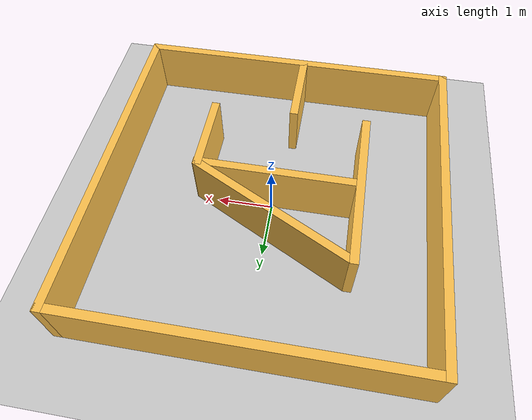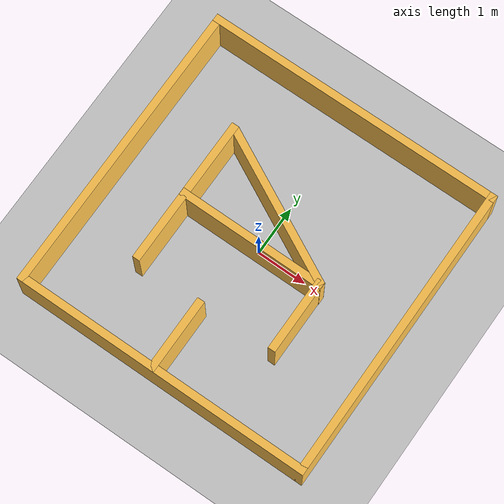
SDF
<?xml version='1.0'?>
<sdf version='1.5'>
<world name='default'>
  <light name='sun' type='directional'>
      <cast_shadows>1</cast_shadows>
      <pose>0 0 10 0 -0 0</pose>
      <diffuse>0.8 0.8 0.8 1</diffuse>
      <specular>0.2 0.2 0.2 1</specular>
      <attenuation>
        <range>1000</range>
        <constant>0.9</constant>
        <linear>0.01</linear>
        <quadratic>0.001</quadratic>
      </attenuation>
      <direction>0.5 0.1 -0.9</direction>
    </light>

  <model name='ground_plane'>
      <static>1</static>
      <link name='link'>
        <collision name='collision'>
          <geometry>
            <plane>
              <normal>0 0 1</normal>
              <size>100 100</size>
            </plane>
          </geometry>
          <surface>
            <friction>
              <ode>
                <mu>100</mu>
                <mu2>50</mu2>
              </ode>
            </friction>
            <bounce/>
            <contact>
              <ode/>
            </contact>
          </surface>
          <max_contacts>10</max_contacts>
        </collision>
        <visual name='visual'>
          <cast_shadows>0</cast_shadows>
          <geometry>
            <plane>
              <normal>0 0 1</normal>
              <size>100 100</size>
            </plane>
          </geometry>
          <material>
            <script>
              <uri>file://media/materials/scripts/gazebo.material</uri>
              <name>Gazebo/Grey</name>
            </script>
          </material>
        </visual>
        <velocity_decay>
          <linear>0</linear>
          <angular>0</angular>
        </velocity_decay>
        <self_collide>0</self_collide>
        <kinematic>0</kinematic>
        <gravity>1</gravity>
      </link>
  </model>

  <model name='Circuit_ql_1'>
    <link name='Wall_10'>
      <pose frame=''>-0.0015 2.925 0 0 -0 3.14159</pose>
      <self_collide>0</self_collide>
      <kinematic>0</kinematic>
      <visual name='Wall_10_Visual'>
        <pose frame=''>0 0 0.5 0 -0 0</pose>
        <geometry>
          <box>
            <size>6 0.15 1</size>
          </box>
        </geometry>
        <material>
          <script>
            <uri>file://media/materials/scripts/gazebo.material</uri>
            <name>Gazebo/Grey</name>
          </script>
          <ambient>1 0.764706 0.305882 1</ambient>
          <shader type='pixel'/>
          <diffuse>0.7 0.7 0.7 1</diffuse>
          <specular>0.01 0.01 0.01 1</specular>
          <emissive>0 0 0 1</emissive>
        </material>
        <cast_shadows>1</cast_shadows>
        <transparency>0</transparency>
      </visual>
      <collision name='Wall_10_Collision'>
        <laser_retro>0</laser_retro>
        <max_contacts>10</max_contacts>
        <pose frame=''>0 0 0.5 0 -0 0</pose>
        <geometry>
          <box>
            <size>6 0.15 1</size>
          </box>
        </geometry>
        <surface>
          <friction>
            <ode>
              <mu>1</mu>
              <mu2>1</mu2>
              <fdir1>0 0 0</fdir1>
              <slip1>0</slip1>
              <slip2>0</slip2>
            </ode>
          </friction>
          <bounce>
            <restitution_coefficient>0</restitution_coefficient>
            <threshold>1e+06</threshold>
          </bounce>
          <contact>
            <collide_without_contact>0</collide_without_contact>
            <collide_without_contact_bitmask>1</collide_without_contact_bitmask>
            <collide_bitmask>1</collide_bitmask>
            <ode>
              <soft_cfm>0</soft_cfm>
              <soft_erp>0.2</soft_erp>
              <kp>1e+13</kp>
              <kd>1</kd>
              <max_vel>0.01</max_vel>
              <min_depth>0</min_depth>
            </ode>
            <bullet>
              <split_impulse>1</split_impulse>
              <split_impulse_penetration_threshold>-0.01</split_impulse_penetration_threshold>
              <soft_cfm>0</soft_cfm>
              <soft_erp>0.2</soft_erp>
              <kp>1e+13</kp>
              <kd>1</kd>
            </bullet>
          </contact>
        </surface>
      </collision>
    </link>
    <link name='Wall_11'>
      <pose frame=''>-2.9265 0 0 0 0 -1.5708</pose>
      <self_collide>0</self_collide>
      <kinematic>0</kinematic>
      <visual name='Wall_11_Visual'>
        <pose frame=''>0 0 0.5 0 -0 0</pose>
        <geometry>
          <box>
            <size>6 0.15 1</size>
          </box>
        </geometry>
        <material>
          <script>
            <uri>file://media/materials/scripts/gazebo.material</uri>
            <name>Gazebo/Grey</name>
          </script>
          <ambient>1 0.764706 0.305882 1</ambient>
          <shader type='pixel'/>
          <diffuse>0.7 0.7 0.7 1</diffuse>
          <specular>0.01 0.01 0.01 1</specular>
          <emissive>0 0 0 1</emissive>
        </material>
        <cast_shadows>1</cast_shadows>
        <transparency>0</transparency>
      </visual>
      <collision name='Wall_11_Collision'>
        <laser_retro>0</laser_retro>
        <max_contacts>10</max_contacts>
        <pose frame=''>0 0 0.5 0 -0 0</pose>
        <geometry>
          <box>
            <size>6 0.15 1</size>
          </box>
        </geometry>
        <surface>
          <friction>
            <ode>
              <mu>1</mu>
              <mu2>1</mu2>
              <fdir1>0 0 0</fdir1>
              <slip1>0</slip1>
              <slip2>0</slip2>
            </ode>
          </friction>
          <bounce>
            <restitution_coefficient>0</restitution_coefficient>
            <threshold>1e+06</threshold>
          </bounce>
          <contact>
            <collide_without_contact>0</collide_without_contact>
            <collide_without_contact_bitmask>1</collide_without_contact_bitmask>
            <collide_bitmask>1</collide_bitmask>
            <ode>
              <soft_cfm>0</soft_cfm>
              <soft_erp>0.2</soft_erp>
              <kp>1e+13</kp>
              <kd>1</kd>
              <max_vel>0.01</max_vel>
              <min_depth>0</min_depth>
            </ode>
            <bullet>
              <split_impulse>1</split_impulse>
              <split_impulse_penetration_threshold>-0.01</split_impulse_penetration_threshold>
              <soft_cfm>0</soft_cfm>
              <soft_erp>0.2</soft_erp>
              <kp>1e+13</kp>
              <kd>1</kd>
            </bullet>
          </contact>
        </surface>
      </collision>
    </link>
    <link name='Wall_13'>
      <pose frame=''>-0.1665 -2.238 0 0 -0 1.5708</pose>
      <self_collide>0</self_collide>
      <kinematic>0</kinematic>
      <visual name='Wall_13_Visual'>
        <pose frame=''>0 0 0.5 0 -0 0</pose>
        <geometry>
          <box>
            <size>1.5 0.15 1</size>
          </box>
        </geometry>
        <material>
          <script>
            <uri>file://media/materials/scripts/gazebo.material</uri>
            <name>Gazebo/Grey</name>
          </script>
          <ambient>1 0.764706 0.305882 1</ambient>
          <shader type='pixel'/>
          <diffuse>0.7 0.7 0.7 1</diffuse>
          <specular>0.01 0.01 0.01 1</specular>
          <emissive>0 0 0 1</emissive>
        </material>
        <cast_shadows>1</cast_shadows>
        <transparency>0</transparency>
      </visual>
      <collision name='Wall_13_Collision'>
        <laser_retro>0</laser_retro>
        <max_contacts>10</max_contacts>
        <pose frame=''>0 0 0.5 0 -0 0</pose>
        <geometry>
          <box>
            <size>1.5 0.15 1</size>
          </box>
        </geometry>
        <surface>
          <friction>
            <ode>
              <mu>1</mu>
              <mu2>1</mu2>
              <fdir1>0 0 0</fdir1>
              <slip1>0</slip1>
              <slip2>0</slip2>
            </ode>
          </friction>
          <bounce>
            <restitution_coefficient>0</restitution_coefficient>
            <threshold>1e+06</threshold>
          </bounce>
          <contact>
            <collide_without_contact>0</collide_without_contact>
            <collide_without_contact_bitmask>1</collide_without_contact_bitmask>
            <collide_bitmask>1</collide_bitmask>
            <ode>
              <soft_cfm>0</soft_cfm>
              <soft_erp>0.2</soft_erp>
              <kp>1e+13</kp>
              <kd>1</kd>
              <max_vel>0.01</max_vel>
              <min_depth>0</min_depth>
            </ode>
            <bullet>
              <split_impulse>1</split_impulse>
              <split_impulse_penetration_threshold>-0.01</split_impulse_penetration_threshold>
              <soft_cfm>0</soft_cfm>
              <soft_erp>0.2</soft_erp>
              <kp>1e+13</kp>
              <kd>1</kd>
            </bullet>
          </contact>
        </surface>
      </collision>
    </link>
    <link name='Wall_13_clone'>
      <pose frame=''>1.32944 -0.77198 0 0 -0 1.5708</pose>
      <self_collide>0</self_collide>
      <kinematic>0</kinematic>
      <visual name='ModelPreview_1::Wall_13_clone::Wall_13_Visual'>
        <pose frame=''>0 0 0.5 0 -0 0</pose>
        <geometry>
          <box>
            <size>1.5 0.15 1</size>
          </box>
        </geometry>
        <material>
          <script>
            <uri>file://media/materials/scripts/gazebo.material</uri>
            <name>Gazebo/Grey</name>
          </script>
          <ambient>1 0.764706 0.305882 1</ambient>
          <shader type='pixel'/>
          <diffuse>0.7 0.7 0.7 1</diffuse>
          <specular>0.01 0.01 0.01 1</specular>
          <emissive>0 0 0 1</emissive>
        </material>
        <cast_shadows>1</cast_shadows>
        <transparency>0</transparency>
      </visual>
      <collision name='Wall_13_Collision'>
        <laser_retro>0</laser_retro>
        <max_contacts>10</max_contacts>
        <pose frame=''>0 0 0.5 0 -0 0</pose>
        <geometry>
          <box>
            <size>1.5 0.15 1</size>
          </box>
        </geometry>
        <surface>
          <friction>
            <ode>
              <mu>1</mu>
              <mu2>1</mu2>
              <fdir1>0 0 0</fdir1>
              <slip1>0</slip1>
              <slip2>0</slip2>
            </ode>
          </friction>
          <bounce>
            <restitution_coefficient>0</restitution_coefficient>
            <threshold>1e+06</threshold>
          </bounce>
          <contact>
            <collide_without_contact>0</collide_without_contact>
            <collide_without_contact_bitmask>1</collide_without_contact_bitmask>
            <collide_bitmask>1</collide_bitmask>
            <ode>
              <soft_cfm>0</soft_cfm>
              <soft_erp>0.2</soft_erp>
              <kp>1e+13</kp>
              <kd>1</kd>
              <max_vel>0.01</max_vel>
              <min_depth>0</min_depth>
            </ode>
            <bullet>
              <split_impulse>1</split_impulse>
              <split_impulse_penetration_threshold>-0.01</split_impulse_penetration_threshold>
              <soft_cfm>0</soft_cfm>
              <soft_erp>0.2</soft_erp>
              <kp>1e+13</kp>
              <kd>1</kd>
            </bullet>
          </contact>
        </surface>
      </collision>
    </link>
    <link name='Wall_15'>
      <pose frame=''>-1.51922 -0.038071 0 0 -0 1.5708</pose>
      <self_collide>0</self_collide>
      <kinematic>0</kinematic>
      <visual name='Wall_15_Visual'>
        <pose frame=''>0 0 0.5 0 -0 0</pose>
        <geometry>
          <box>
            <size>3 0.15 1</size>
          </box>
        </geometry>
        <material>
          <script>
            <uri>file://media/materials/scripts/gazebo.material</uri>
            <name>Gazebo/Grey</name>
          </script>
          <ambient>1 0.764706 0.305882 1</ambient>
          <shader type='pixel'/>
          <diffuse>0.7 0.7 0.7 1</diffuse>
          <specular>0.01 0.01 0.01 1</specular>
          <emissive>0 0 0 1</emissive>
        </material>
        <cast_shadows>1</cast_shadows>
        <transparency>0</transparency>
      </visual>
      <collision name='Wall_15_Collision'>
        <laser_retro>0</laser_retro>
        <max_contacts>10</max_contacts>
        <pose frame=''>0 0 0.5 0 -0 0</pose>
        <geometry>
          <box>
            <size>3 0.15 1</size>
          </box>
        </geometry>
        <surface>
          <friction>
            <ode>
              <mu>1</mu>
              <mu2>1</mu2>
              <fdir1>0 0 0</fdir1>
              <slip1>0</slip1>
              <slip2>0</slip2>
            </ode>
          </friction>
          <bounce>
            <restitution_coefficient>0</restitution_coefficient>
            <threshold>1e+06</threshold>
          </bounce>
          <contact>
            <collide_without_contact>0</collide_without_contact>
            <collide_without_contact_bitmask>1</collide_without_contact_bitmask>
            <collide_bitmask>1</collide_bitmask>
            <ode>
              <soft_cfm>0</soft_cfm>
              <soft_erp>0.2</soft_erp>
              <kp>1e+13</kp>
              <kd>1</kd>
              <max_vel>0.01</max_vel>
              <min_depth>0</min_depth>
            </ode>
            <bullet>
              <split_impulse>1</split_impulse>
              <split_impulse_penetration_threshold>-0.01</split_impulse_penetration_threshold>
              <soft_cfm>0</soft_cfm>
              <soft_erp>0.2</soft_erp>
              <kp>1e+13</kp>
              <kd>1</kd>
            </bullet>
          </contact>
        </surface>
      </collision>
    </link>
    <link name='Wall_15_clone'>
      <pose frame=''>-0.089166 -0.090738 0 0 0 -0.004296</pose>
      <self_collide>0</self_collide>
      <kinematic>0</kinematic>
      <visual name='ModelPreview_1::Wall_15_clone::Wall_15_Visual'>
        <pose frame=''>0 0 0.5 0 -0 0</pose>
        <geometry>
          <box>
            <size>3 0.15 1</size>
          </box>
        </geometry>
        <material>
          <script>
            <uri>file://media/materials/scripts/gazebo.material</uri>
            <name>Gazebo/Grey</name>
          </script>
          <ambient>1 0.764706 0.305882 1</ambient>
          <shader type='pixel'/>
          <diffuse>0.7 0.7 0.7 1</diffuse>
          <specular>0.01 0.01 0.01 1</specular>
          <emissive>0 0 0 1</emissive>
        </material>
        <cast_shadows>1</cast_shadows>
        <transparency>0</transparency>
      </visual>
      <collision name='Wall_15_Collision'>
        <laser_retro>0</laser_retro>
        <max_contacts>10</max_contacts>
        <pose frame=''>0 0 0.5 0 -0 0</pose>
        <geometry>
          <box>
            <size>3 0.15 1</size>
          </box>
        </geometry>
        <surface>
          <friction>
            <ode>
              <mu>1</mu>
              <mu2>1</mu2>
              <fdir1>0 0 0</fdir1>
              <slip1>0</slip1>
              <slip2>0</slip2>
            </ode>
          </friction>
          <bounce>
            <restitution_coefficient>0</restitution_coefficient>
            <threshold>1e+06</threshold>
          </bounce>
          <contact>
            <collide_without_contact>0</collide_without_contact>
            <collide_without_contact_bitmask>1</collide_without_contact_bitmask>
            <collide_bitmask>1</collide_bitmask>
            <ode>
              <soft_cfm>0</soft_cfm>
              <soft_erp>0.2</soft_erp>
              <kp>1e+13</kp>
              <kd>1</kd>
              <max_vel>0.01</max_vel>
              <min_depth>0</min_depth>
            </ode>
            <bullet>
              <split_impulse>1</split_impulse>
              <split_impulse_penetration_threshold>-0.01</split_impulse_penetration_threshold>
              <soft_cfm>0</soft_cfm>
              <soft_erp>0.2</soft_erp>
              <kp>1e+13</kp>
              <kd>1</kd>
            </bullet>
          </contact>
        </surface>
      </collision>
    </link>
    <link name='Wall_15_clone_0'>
      <pose frame=''>-0.053217 0.650721 0 0 0 -0.479256</pose>
      <self_collide>0</self_collide>
      <kinematic>0</kinematic>
      <visual name='ModelPreview_1::Wall_15_clone_0::Wall_15_Visual'>
        <pose frame=''>0 0 0.5 0 -0 0</pose>
        <geometry>
          <box>
            <size>3.22377 0.15 1</size>
          </box>
        </geometry>
        <material>
          <script>
            <uri>file://media/materials/scripts/gazebo.material</uri>
            <name>Gazebo/Grey</name>
          </script>
          <ambient>1 0.764706 0.305882 1</ambient>
          <shader type='pixel'/>
          <diffuse>0.7 0.7 0.7 1</diffuse>
          <specular>0.01 0.01 0.01 1</specular>
          <emissive>0 0 0 1</emissive>
        </material>
        <cast_shadows>1</cast_shadows>
        <transparency>0</transparency>
      </visual>
      <collision name='Wall_15_Collision'>
        <laser_retro>0</laser_retro>
        <max_contacts>10</max_contacts>
        <pose frame=''>0 0 0.5 0 -0 0</pose>
        <geometry>
          <box>
            <size>3.22377 0.15 1</size>
          </box>
        </geometry>
        <surface>
          <friction>
            <ode>
              <mu>1</mu>
              <mu2>1</mu2>
              <fdir1>0 0 0</fdir1>
              <slip1>0</slip1>
              <slip2>0</slip2>
            </ode>
          </friction>
          <bounce>
            <restitution_coefficient>0</restitution_coefficient>
            <threshold>1e+06</threshold>
          </bounce>
          <contact>
            <collide_without_contact>0</collide_without_contact>
            <collide_without_contact_bitmask>1</collide_without_contact_bitmask>
            <collide_bitmask>1</collide_bitmask>
            <ode>
              <soft_cfm>0</soft_cfm>
              <soft_erp>0.2</soft_erp>
              <kp>1e+13</kp>
              <kd>1</kd>
              <max_vel>0.01</max_vel>
              <min_depth>0</min_depth>
            </ode>
            <bullet>
              <split_impulse>1</split_impulse>
              <split_impulse_penetration_threshold>-0.01</split_impulse_penetration_threshold>
              <soft_cfm>0</soft_cfm>
              <soft_erp>0.2</soft_erp>
              <kp>1e+13</kp>
              <kd>1</kd>
            </bullet>
          </contact>
        </surface>
      </collision>
    </link>
    <link name='Wall_6'>
      <pose frame=''>-0.0015 -2.925 0 0 -0 0</pose>
      <self_collide>0</self_collide>
      <kinematic>0</kinematic>
      <visual name='Wall_6_Visual'>
        <pose frame=''>0 0 0.5 0 -0 0</pose>
        <geometry>
          <box>
            <size>6 0.15 1</size>
          </box>
        </geometry>
        <material>
          <script>
            <uri>file://media/materials/scripts/gazebo.material</uri>
            <name>Gazebo/Grey</name>
          </script>
          <ambient>1 0.764706 0.305882 1</ambient>
          <shader type='pixel'/>
          <diffuse>0.7 0.7 0.7 1</diffuse>
          <specular>0.01 0.01 0.01 1</specular>
          <emissive>0 0 0 1</emissive>
        </material>
        <cast_shadows>1</cast_shadows>
        <transparency>0</transparency>
      </visual>
      <collision name='Wall_6_Collision'>
        <laser_retro>0</laser_retro>
        <max_contacts>10</max_contacts>
        <pose frame=''>0 0 0.5 0 -0 0</pose>
        <geometry>
          <box>
            <size>6 0.15 1</size>
          </box>
        </geometry>
        <surface>
          <friction>
            <ode>
              <mu>1</mu>
              <mu2>1</mu2>
              <fdir1>0 0 0</fdir1>
              <slip1>0</slip1>
              <slip2>0</slip2>
            </ode>
          </friction>
          <bounce>
            <restitution_coefficient>0</restitution_coefficient>
            <threshold>1e+06</threshold>
          </bounce>
          <contact>
            <collide_without_contact>0</collide_without_contact>
            <collide_without_contact_bitmask>1</collide_without_contact_bitmask>
            <collide_bitmask>1</collide_bitmask>
            <ode>
              <soft_cfm>0</soft_cfm>
              <soft_erp>0.2</soft_erp>
              <kp>1e+13</kp>
              <kd>1</kd>
              <max_vel>0.01</max_vel>
              <min_depth>0</min_depth>
            </ode>
            <bullet>
              <split_impulse>1</split_impulse>
              <split_impulse_penetration_threshold>-0.01</split_impulse_penetration_threshold>
              <soft_cfm>0</soft_cfm>
              <soft_erp>0.2</soft_erp>
              <kp>1e+13</kp>
              <kd>1</kd>
            </bullet>
          </contact>
        </surface>
      </collision>
    </link>
    <link name='Wall_7'>
      <pose frame=''>2.9235 0 0 0 -0 1.5708</pose>
      <self_collide>0</self_collide>
      <kinematic>0</kinematic>
      <visual name='Wall_7_Visual'>
        <pose frame=''>0 0 0.5 0 -0 0</pose>
        <geometry>
          <box>
            <size>6 0.15 1</size>
          </box>
        </geometry>
        <material>
          <script>
            <uri>file://media/materials/scripts/gazebo.material</uri>
            <name>Gazebo/Grey</name>
          </script>
          <ambient>1 0.764706 0.305882 1</ambient>
          <shader type='pixel'/>
          <diffuse>0.7 0.7 0.7 1</diffuse>
          <specular>0.01 0.01 0.01 1</specular>
          <emissive>0 0 0 1</emissive>
        </material>
        <cast_shadows>1</cast_shadows>
        <transparency>0</transparency>
      </visual>
      <collision name='Wall_7_Collision'>
        <laser_retro>0</laser_retro>
        <max_contacts>10</max_contacts>
        <pose frame=''>0 0 0.5 0 -0 0</pose>
        <geometry>
          <box>
            <size>6 0.15 1</size>
          </box>
        </geometry>
        <surface>
          <friction>
            <ode>
              <mu>1</mu>
              <mu2>1</mu2>
              <fdir1>0 0 0</fdir1>
              <slip1>0</slip1>
              <slip2>0</slip2>
            </ode>
          </friction>
          <bounce>
            <restitution_coefficient>0</restitution_coefficient>
            <threshold>1e+06</threshold>
          </bounce>
          <contact>
            <collide_without_contact>0</collide_without_contact>
            <collide_without_contact_bitmask>1</collide_without_contact_bitmask>
            <collide_bitmask>1</collide_bitmask>
            <ode>
              <soft_cfm>0</soft_cfm>
              <soft_erp>0.2</soft_erp>
              <kp>1e+13</kp>
              <kd>1</kd>
              <max_vel>0.01</max_vel>
              <min_depth>0</min_depth>
            </ode>
            <bullet>
              <split_impulse>1</split_impulse>
              <split_impulse_penetration_threshold>-0.01</split_impulse_penetration_threshold>
              <soft_cfm>0</soft_cfm>
              <soft_erp>0.2</soft_erp>
              <kp>1e+13</kp>
              <kd>1</kd>
            </bullet>
          </contact>
        </surface>
      </collision>
    </link>
    <static>1</static>
    <allow_auto_disable>1</allow_auto_disable>
  </model>
</world>
</sdf>
